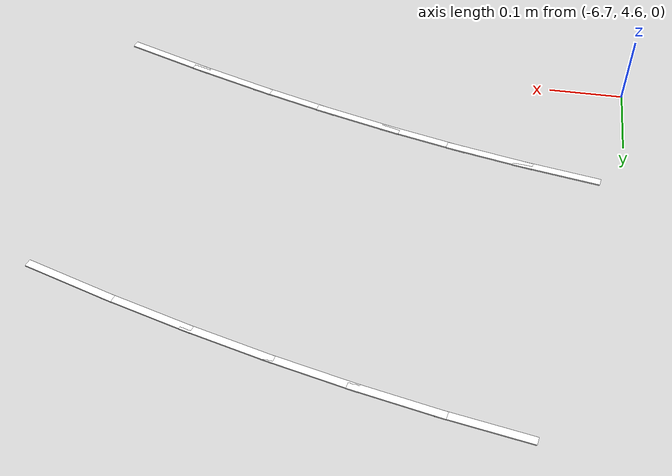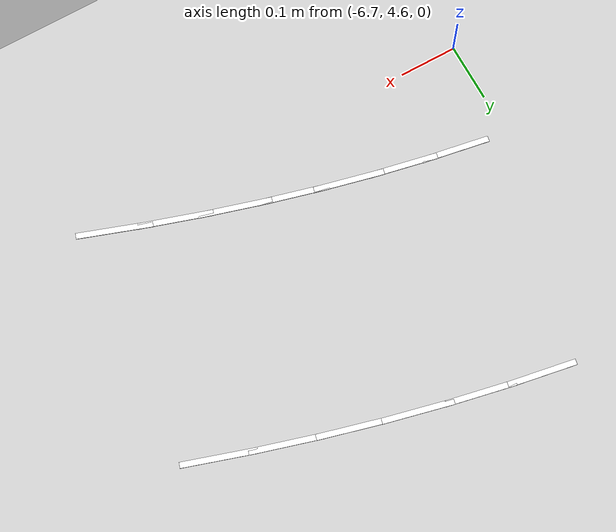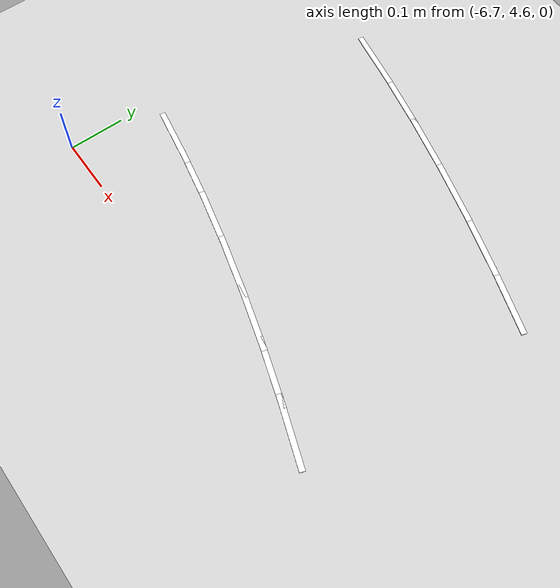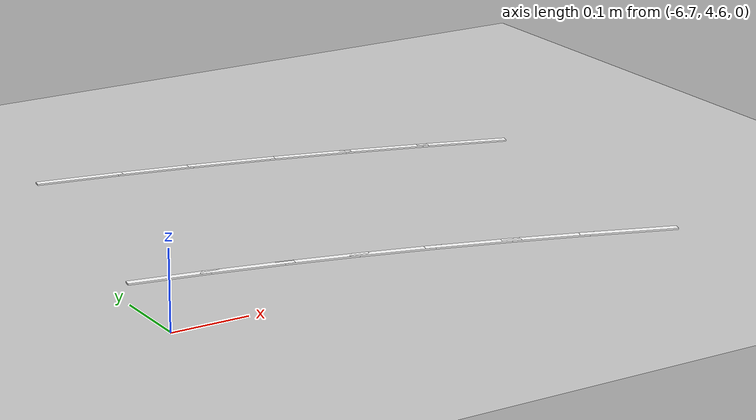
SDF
<sdf version="1.7">
 <world name="default">
  <model name="ground_plane">
   <static>1</static>
   <link name="link">
    <collision name="collision">
     <geometry><plane><normal>0 0 1</normal><size>100 100</size></plane></geometry>
     <surface>
      <contact><collide_bitmask>65535</collide_bitmask></contact>
      <friction><ode><mu>100</mu><mu2>50</mu2></ode></friction>
     </surface>
    </collision>
    <visual name="visual">
     <cast_shadows>0</cast_shadows>
     <geometry><plane><normal>0 0 1</normal><size>100 100</size></plane></geometry>
     <material>
      <script><uri>file://media/materials/scripts/gazebo.material</uri><name>Gazebo/Grey</name></script>
     </material>
    </visual>
   </link>
  </model>
  <model name="lane_line_left_300">
   <static>1</static>
   <link name="link">
    <pose>0 0 -0.004 0 -0 0</pose>
    <visual name="visual">
     <geometry><box><size>0.1269 0.01 0.01</size></box></geometry>
     <material><ambient>1 1 1 1</ambient><diffuse>1 1 1 1</diffuse></material>
    </visual>
    <collision name="collision"><geometry><box><size>0.1269 0.01 0.01</size></box></geometry></collision>
   </link>
   <pose>-6.05577 4.60727 0 0 -0 2.80239</pose>
  </model>
  <model name="lane_line_left_301">
   <static>1</static>
   <link name="link">
    <pose>0 0 -0.004 0 -0 0</pose>
    <visual name="visual">
     <geometry><box><size>0.125 0.01 0.01</size></box></geometry>
     <material><ambient>1 1 1 1</ambient><diffuse>1 1 1 1</diffuse></material>
    </visual>
    <collision name="collision"><geometry><box><size>0.125 0.01 0.01</size></box></geometry></collision>
   </link>
   <pose>-6.1515 4.63975 0 0 -0 2.82677</pose>
  </model>
  <model name="lane_line_right_301">
   <static>1</static>
   <link name="link">
    <pose>0 0 -0.004 0 -0 0</pose>
    <visual name="visual">
     <geometry><box><size>0.125 0.01 0.01</size></box></geometry>
     <material><ambient>1 1 1 1</ambient><diffuse>1 1 1 1</diffuse></material>
    </visual>
    <collision name="collision"><geometry><box><size>0.125 0.01 0.01</size></box></geometry></collision>
   </link>
   <pose>-6.02764 5.02009 0 0 -0 2.82677</pose>
  </model>
  <model name="lane_line_left_302">
   <static>1</static>
   <link name="link">
    <pose>0 0 -0.004 0 -0 0</pose>
    <visual name="visual">
     <geometry><box><size>0.1232 0.01 0.01</size></box></geometry>
     <material><ambient>1 1 1 1</ambient><diffuse>1 1 1 1</diffuse></material>
    </visual>
    <collision name="collision"><geometry><box><size>0.1232 0.01 0.01</size></box></geometry></collision>
   </link>
   <pose>-6.24604 4.66923 0 0 -0 2.85217</pose>
  </model>
  <model name="lane_line_right_302">
   <static>1</static>
   <link name="link">
    <pose>0 0 -0.004 0 -0 0</pose>
    <visual name="visual">
     <geometry><box><size>0.1232 0.01 0.01</size></box></geometry>
     <material><ambient>1 1 1 1</ambient><diffuse>1 1 1 1</diffuse></material>
    </visual>
    <collision name="collision"><geometry><box><size>0.1232 0.01 0.01</size></box></geometry></collision>
   </link>
   <pose>-6.13188 5.05259 0 0 -0 2.85217</pose>
  </model>
  <model name="lane_line_left_303">
   <static>1</static>
   <link name="link">
    <pose>0 0 -0.004 0 -0 0</pose>
    <visual name="visual">
     <geometry><box><size>0.1214 0.01 0.01</size></box></geometry>
     <material><ambient>1 1 1 1</ambient><diffuse>1 1 1 1</diffuse></material>
    </visual>
    <collision name="collision"><geometry><box><size>0.1214 0.01 0.01</size></box></geometry></collision>
   </link>
   <pose>-6.33936 4.69569 0 0 -0 2.87861</pose>
  </model>
  <model name="lane_line_right_303">
   <static>1</static>
   <link name="link">
    <pose>0 0 -0.004 0 -0 0</pose>
    <visual name="visual">
     <geometry><box><size>0.1214 0.01 0.01</size></box></geometry>
     <material><ambient>1 1 1 1</ambient><diffuse>1 1 1 1</diffuse></material>
    </visual>
    <collision name="collision"><geometry><box><size>0.1214 0.01 0.01</size></box></geometry></collision>
   </link>
   <pose>-6.23538 5.08194 0 0 -0 2.87861</pose>
  </model>
  <model name="lane_line_left_304">
   <static>1</static>
   <link name="link">
    <pose>0 0 -0.004 0 -0 0</pose>
    <visual name="visual">
     <geometry><box><size>0.1197 0.01 0.01</size></box></geometry>
     <material><ambient>1 1 1 1</ambient><diffuse>1 1 1 1</diffuse></material>
    </visual>
    <collision name="collision"><geometry><box><size>0.1197 0.01 0.01</size></box></geometry></collision>
   </link>
   <pose>-6.43144 4.71914 0 0 -0 2.90612</pose>
  </model>
  <model name="lane_line_right_304">
   <static>1</static>
   <link name="link">
    <pose>0 0 -0.004 0 -0 0</pose>
    <visual name="visual">
     <geometry><box><size>0.1197 0.01 0.01</size></box></geometry>
     <material><ambient>1 1 1 1</ambient><diffuse>1 1 1 1</diffuse></material>
    </visual>
    <collision name="collision"><geometry><box><size>0.1197 0.01 0.01</size></box></geometry></collision>
   </link>
   <pose>-6.33812 5.1081 0 0 -0 2.90612</pose>
  </model>
  <model name="lane_line_left_305">
   <static>1</static>
   <link name="link">
    <pose>0 0 -0.004 0 -0 0</pose>
    <visual name="visual">
     <geometry><box><size>0.118 0.01 0.01</size></box></geometry>
     <material><ambient>1 1 1 1</ambient><diffuse>1 1 1 1</diffuse></material>
    </visual>
    <collision name="collision"><geometry><box><size>0.118 0.01 0.01</size></box></geometry></collision>
   </link>
   <pose>-6.52226 4.73958 0 0 -0 2.93469</pose>
  </model>
  <model name="lane_line_right_305">
   <static>1</static>
   <link name="link">
    <pose>0 0 -0.004 0 -0 0</pose>
    <visual name="visual">
     <geometry><box><size>0.118 0.01 0.01</size></box></geometry>
     <material><ambient>1 1 1 1</ambient><diffuse>1 1 1 1</diffuse></material>
    </visual>
    <collision name="collision"><geometry><box><size>0.118 0.01 0.01</size></box></geometry></collision>
   </link>
   <pose>-6.44009 5.13105 0 0 -0 2.93469</pose>
  </model>
  <model name="lane_line_left_306">
   <static>1</static>
   <link name="link">
    <pose>0 0 -0.004 0 -0 0</pose>
    <visual name="visual">
     <geometry><box><size>0.1164 0.01 0.01</size></box></geometry>
     <material><ambient>1 1 1 1</ambient><diffuse>1 1 1 1</diffuse></material>
    </visual>
    <collision name="collision"><geometry><box><size>0.1164 0.01 0.01</size></box></geometry></collision>
   </link>
   <pose>-6.61181 4.75701 0 0 -0 2.96434</pose>
  </model>
  <model name="lane_line_right_306">
   <static>1</static>
   <link name="link">
    <pose>0 0 -0.004 0 -0 0</pose>
    <visual name="visual">
     <geometry><box><size>0.1164 0.01 0.01</size></box></geometry>
     <material><ambient>1 1 1 1</ambient><diffuse>1 1 1 1</diffuse></material>
    </visual>
    <collision name="collision"><geometry><box><size>0.1164 0.01 0.01</size></box></geometry></collision>
   </link>
   <pose>-6.54128 5.15074 0 0 -0 2.96434</pose>
  </model>
 </world>
</sdf>
